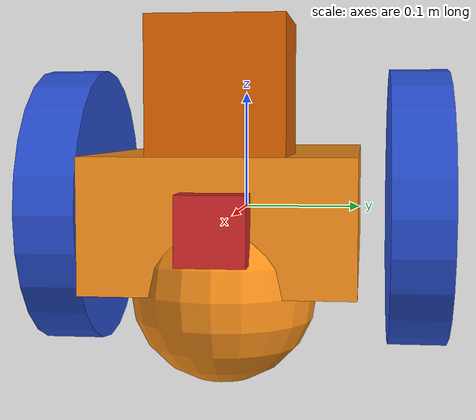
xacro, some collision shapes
<?xml version='1.0'?>

<robot name="my_robot" xmlns:xacro="http://www.ros.org/wiki/xacro">
  <xacro:include filename="$(find my_robot)/urdf/my_robot.gazebo" />
  <link name="robot_footprint"></link>

  <joint name="robot_footprint_joint" type="fixed">
    <origin xyz="0 0 0" rpy="0 0 0" />
    <parent link="robot_footprint"/>
    <child link="chassis" />
  </joint>

  <link name='chassis'>
    <pose>0 0 0.1 0 0 0</pose>

    <inertial>
      <mass value="15.0"/>
      <origin xyz="0.0 0 0" rpy=" 0 0 0"/>
      <inertia
          ixx="0.1" ixy="0" ixz="0"
          iyy="0.1" iyz="0"
          izz="0.1"
      />
    </inertial>

    <collision name='collision'>
      <origin xyz="0 0 0" rpy=" 0 0 0"/>
      <geometry>
        <box size=".4 .2 .1"/>
      </geometry>
    </collision>

    <visual name='chassis_visual'>
      <origin xyz="0 0 0" rpy=" 0 0 0"/>
      <geometry>
        <box size=".4 .2 .1"/>
      </geometry>
    </visual>

    <collision name='back_caster_collision'>
      <origin xyz="-0.15 0 -0.05" rpy=" 0 0 0"/>
      <geometry>
        <sphere radius="0.0699"/>
      </geometry>
    </collision>

    <visual name='back_caster_visual'>
      <origin xyz="-0.15 0 -0.05" rpy=" 0 0 0"/>
      <geometry>
        <sphere radius="0.07"/>
      </geometry>
    </visual>

    <collision name='front_caster_collision'>
      <origin xyz="0.15 0 -0.05" rpy=" 0 0 0"/>
      <geometry>
        <sphere radius="0.0699"/>
      </geometry>
    </collision>

    <visual name='front_caster_visual'>
      <origin xyz="0.15 0 -0.05" rpy=" 0 0 0"/>
      <geometry>
        <sphere radius="0.07"/>
      </geometry>
    </visual>

  </link>

  <link name='left_wheel'>
    <collision name='collision'>
      <origin xyz="0 0 0" rpy=" 0 1.5707 1.5707"/>
      <geometry>
        <cylinder radius="0.12" length="0.05" />
      </geometry>
    </collision>
    <visual name='visual'>
      <origin xyz="0 0 0" rpy=" 0 1.5707 1.5707"/>
      <geometry>
        <cylinder radius="0.12" length="0.05" />
      </geometry>
    </visual>
    <inertial>
      <mass value="5.0"/>
      <origin xyz="0.0 0 0" rpy=" 0 0 0"/>
      <inertia
          ixx="0.1" ixy="0" ixz="0"
          iyy="0.1" iyz="0"
          izz="0.1"
      />
    </inertial>
  </link>
  <link name='right_wheel'>
    <collision name='collision'>
      <origin xyz="0 0 0" rpy=" 0 1.5707 1.5707"/>
      <geometry>
        <cylinder radius="0.12" length="0.05" />
      </geometry>
    </collision>
    <visual name='visual'>
      <origin xyz="0 0 0" rpy=" 0 1.5707 1.5707"/>
      <geometry>
        <cylinder radius="0.12" length="0.05" />
      </geometry>
    </visual>
    <inertial>
      <mass value="5.0"/>
      <origin xyz="0.0 0 0" rpy=" 0 0 0"/>
      <inertia
          ixx="0.1" ixy="0" ixz="0"
          iyy="0.1" iyz="0"
          izz="0.1"
      />
    </inertial>
  </link>

  <joint type="continuous" name="left_wheel_hinge">
    <origin xyz="0 0.15 0" rpy="0 0 0"/>
    <child link="left_wheel"/>
    <parent link="chassis"/>
    <axis xyz="0 1 0" rpy="0 0 0"/>
    <limit effort="10000" velocity="1000"/>
    <dynamics damping="1.0" friction="1.0"/>
  </joint>

  <joint type="continuous" name="right_wheel_hinge">
    <origin xyz="0 -0.15 0" rpy="0 0 0"/>
    <child link="right_wheel"/>
    <parent link="chassis"/>
    <axis xyz="0 1 0" rpy="0 0 0"/>
    <limit effort="10000" velocity="1000"/>
    <dynamics damping="1.0" friction="1.0"/>
  </joint>

  <!-- Add camera -->

  <link name="camera">
    <origin xyz="0 0 0" rpy="0 0 0" />

    <inertial>
      <mass value="0.1"/>
      <inertia
              ixx="1e-6" ixy="0" ixz="0"
              iyy="1e-6" iyz="0" izz="1e-6"
      />
    </inertial>

    <collision>
      <geometry>
        <box size="0.05 0.05 0.05"/>
      </geometry>
    </collision>

    <visual>
      <geometry>
        <box size="0.05 0.05 0.05"/>
      </geometry>
    </visual>
  </link>

  <joint name="camera_joint" type="fixed">
    <axis xyz="0 1 0"/>
    <origin xyz="0.2 0 0" rpy="0 0 0" />
    <parent link="chassis"/>
    <child link="camera" />
  </joint>

  <!-- Add Lidar -->

  <link name="hokuyo">
    <origin xyz="0 0 0" rpy="0 0 0" />

    <inertial>
      <mass value="1e-5"/>
      <inertia
              ixx="1e-6" ixy="0" ixz="0"
              iyy="1e-6" iyz="0" izz="1e-6"
      />
    </inertial>

    <collision>
      <geometry>
        <box size=".1 .1 .1"/>
      </geometry>
    </collision>

    <visual>
      <geometry>
        <mesh filename="package://my_robot/meshes/hokuyo.dae"/>
      </geometry>
    </visual>
  </link>

  <joint name="hokuyo_joint" type="fixed">
    <axis xyz="0 1 0"/>
    <origin xyz="0.15 0 0.1" rpy="0 0 0" />
    <parent link="chassis"/>
    <child link="hokuyo" />
  </joint>

  <!-- Color the components -->

  <gazebo reference="chassis">
    <material>Gazebo/Orange</material>
  </gazebo>

  <gazebo reference="left_wheel">
    <material>Gazebo/Blue</material>
  </gazebo>

  <gazebo reference="right_wheel">
    <material>Gazebo/Blue</material>
  </gazebo>

  <gazebo reference="camera">
    <material>Gazebo/Red</material>
  </gazebo>
</robot>
